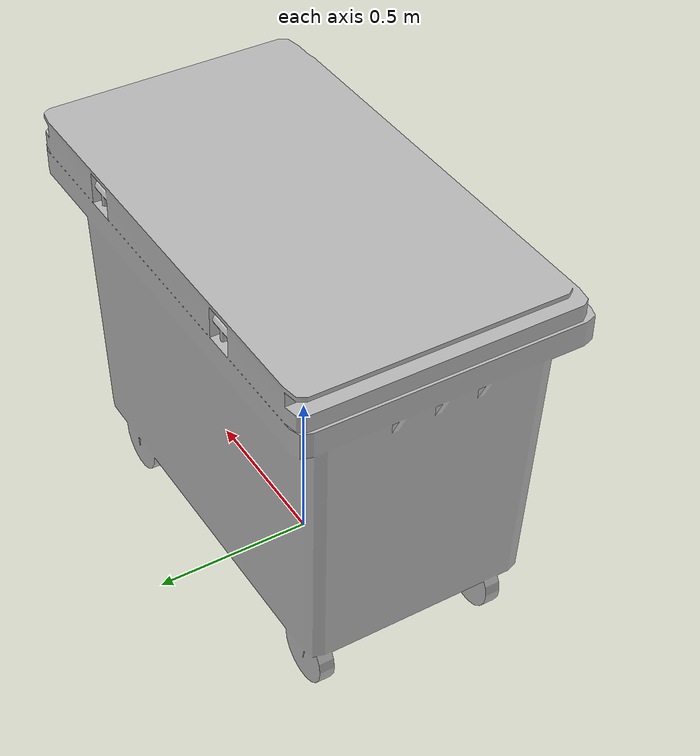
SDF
<?xml version="1.0"?>
<sdf version="1.9">
  <model name="dumpster">
    <static>true</static>
    <link name="link">
      <collision name="collision"><pose>0 0 0.635 0 0 0</pose><geometry><box><size>1.45 0.89 1.27</size></box></geometry></collision>
      <!-- AWS RoboMaker Small Warehouse (MIT-0). -->
      <visual name="mesh_0"><geometry><mesh><uri>meshes/dumpster_0.obj</uri></mesh></geometry><material><pbr><metal><albedo_map>materials/textures/dumpster_0.png</albedo_map></metal></pbr></material></visual>
    </link>
  </model>
</sdf>
